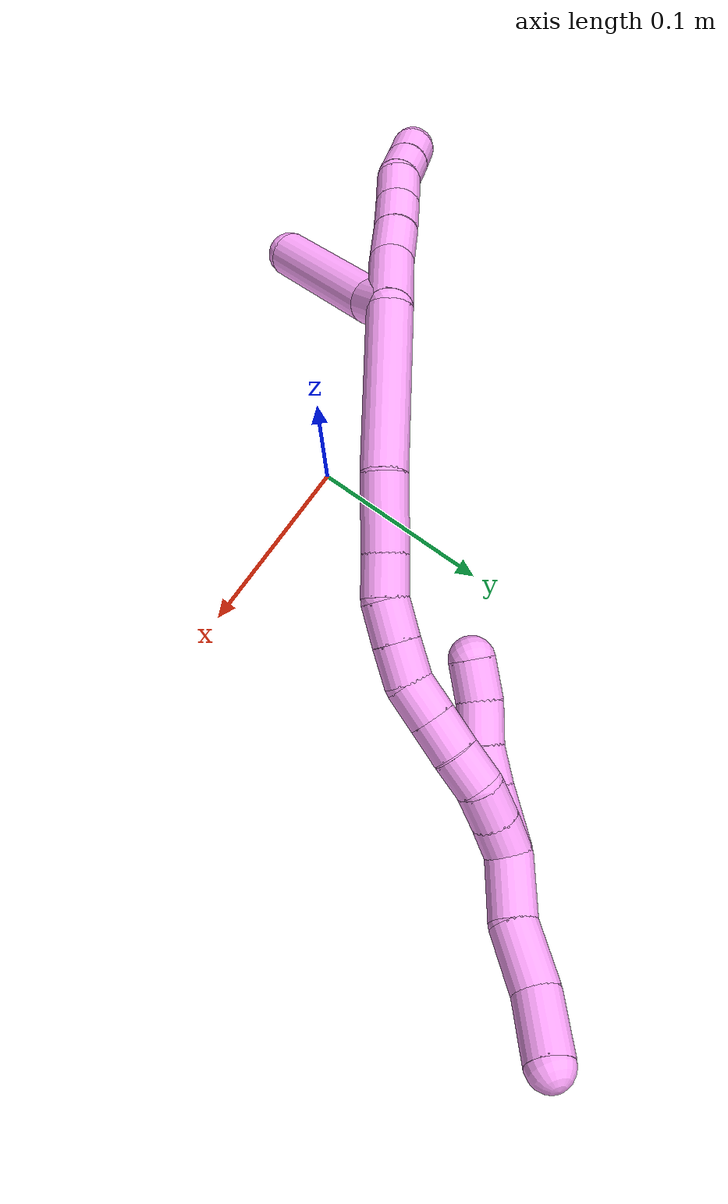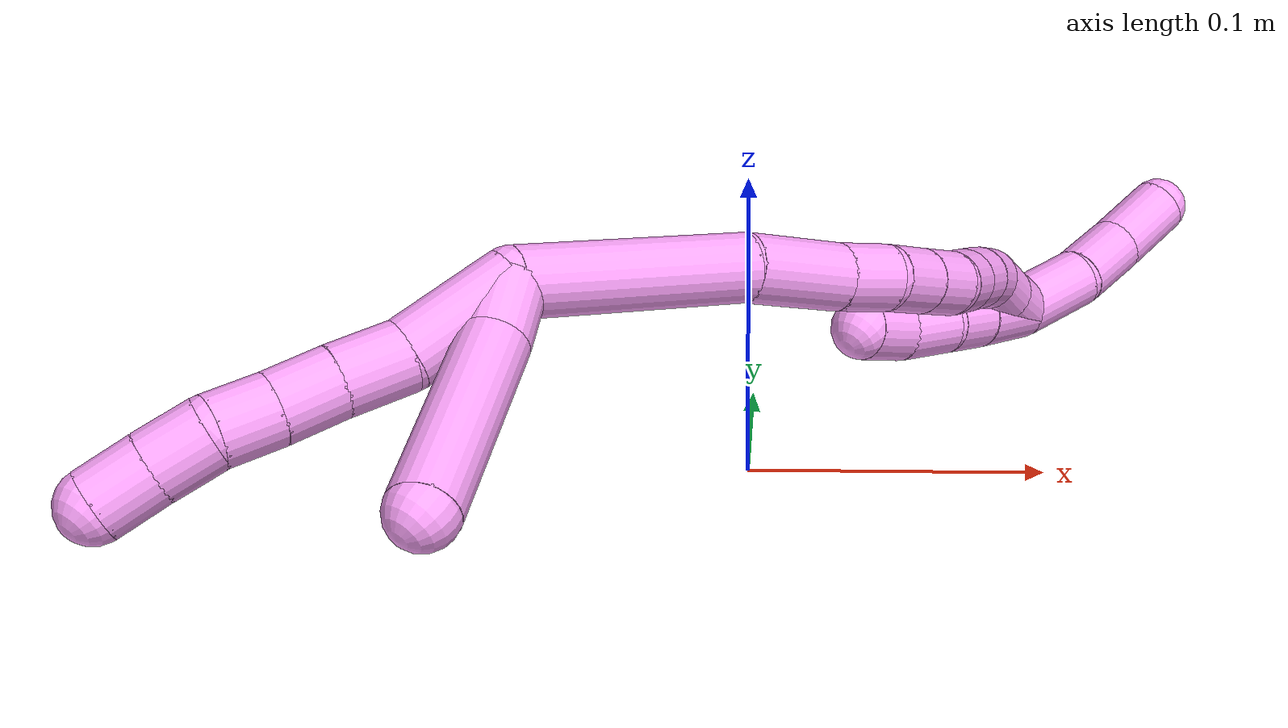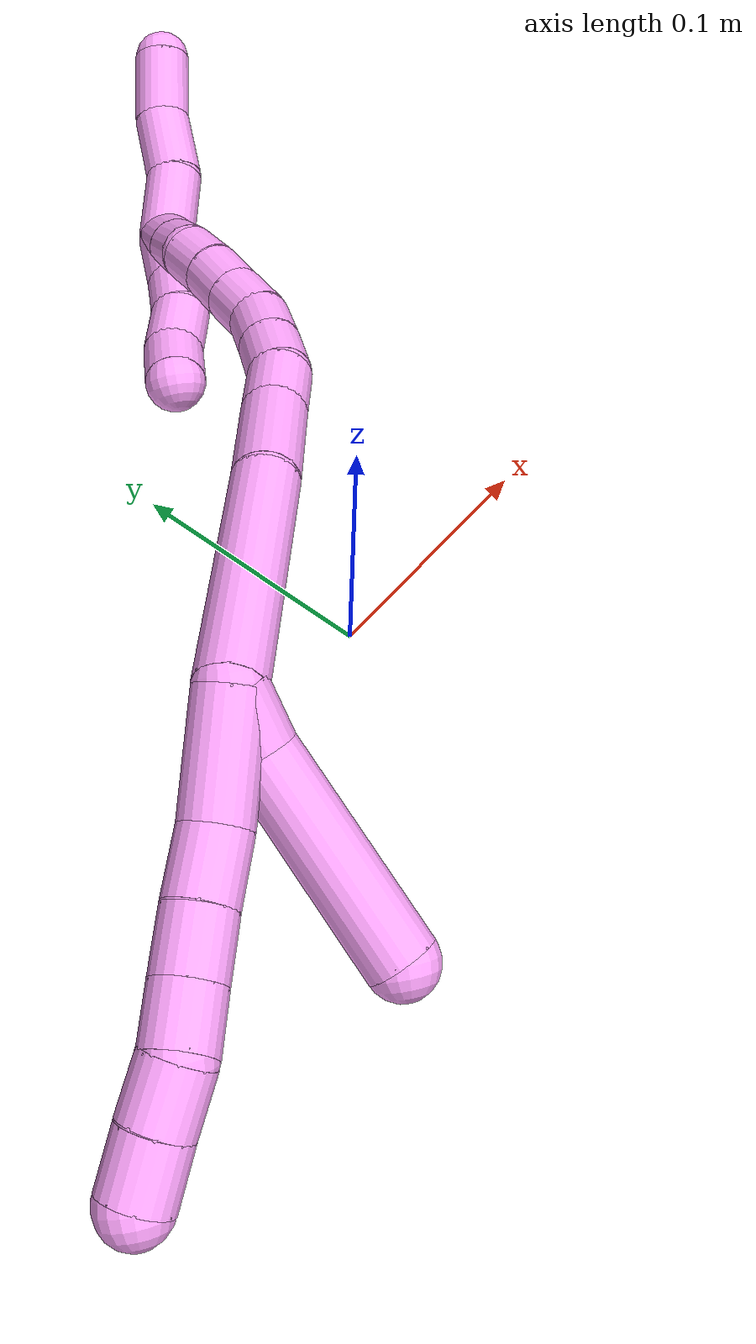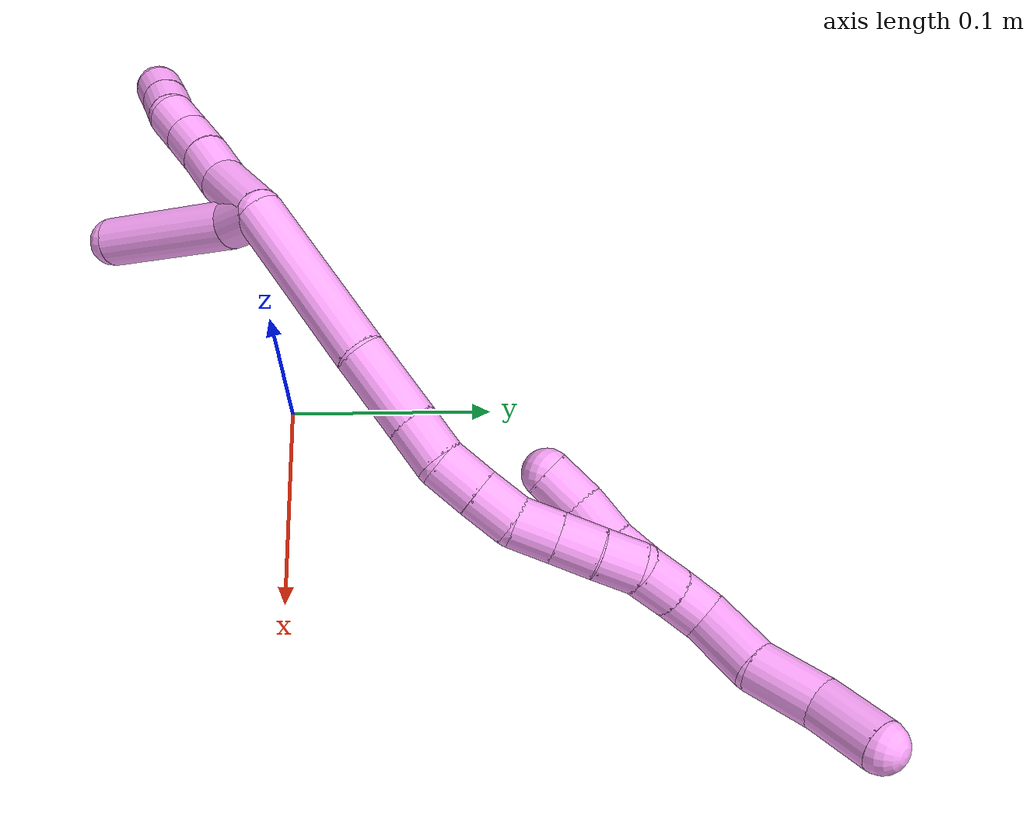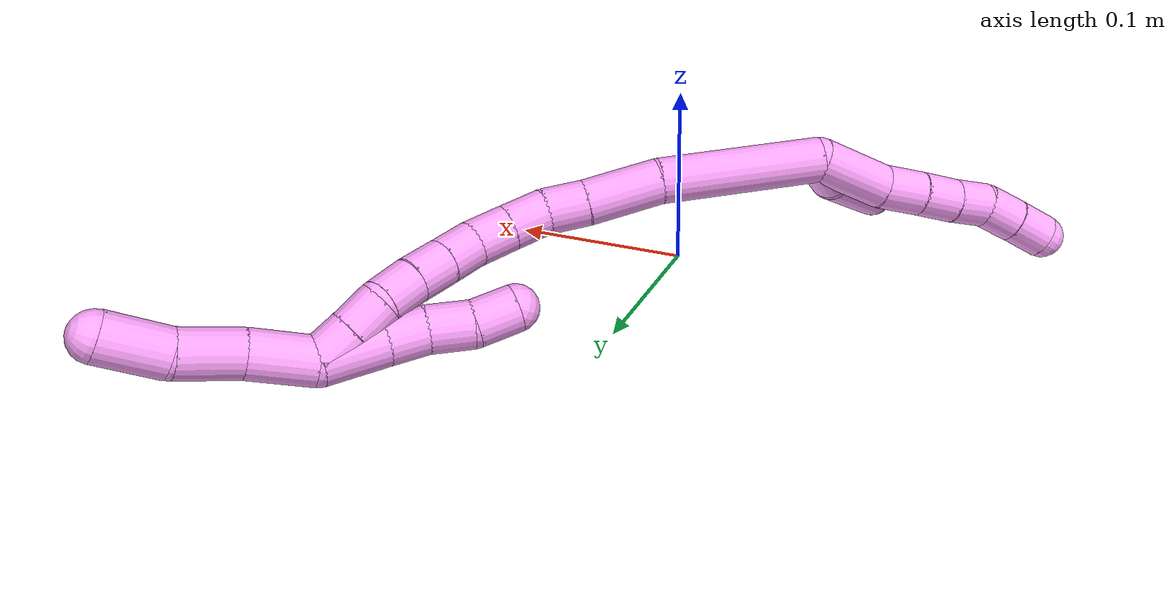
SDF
<sdf version="1.7">
 <world name="default">
  <model name="4">
   <static>0</static>
   <link name="4">
    <collision name="collision-cylinder-e_1_2_8">
     <pose>-0.005664 0.002243 -0.020567 -3.03296 -0.267232 2.37288</pose>
     <geometry><cylinder><radius>0.0125</radius><length>0.042901</length></cylinder></geometry>
     <surface>
      <friction><ode><mu>1.16</mu><mu2>1.16</mu2><slip1>0</slip1><slip2>0</slip2></ode></friction>
      <contact><ode><kp>1e+06</kp><kd>1</kd><max_vel>0</max_vel><min_depth>0.001</min_depth></ode></contact>
     </surface>
    </collision>
    <visual name="visual-cylinder-e_1_2_8">
     <pose>-0.005664 0.002243 -0.020567 -3.03296 -0.267232 2.37288</pose>
     <geometry><cylinder><radius>0.0125</radius><length>0.042901</length></cylinder></geometry>
     <material><ambient>1 0.65098 0.996078 1</ambient></material>
    </visual>
    <collision name="collision-cylinder-e_2_8_9">
     <pose>-0.016817 0.004353 -0.05187 3.12923 -0.472523 -3.09024</pose>
     <geometry><cylinder><radius>0.0125</radius><length>0.024117</length></cylinder></geometry>
     <surface>
      <friction><ode><mu>1.16</mu><mu2>1.16</mu2><slip1>0</slip1><slip2>0</slip2></ode></friction>
      <contact><ode><kp>1e+06</kp><kd>1</kd><max_vel>0</max_vel><min_depth>0.001</min_depth></ode></contact>
     </surface>
    </collision>
    <visual name="visual-cylinder-e_2_8_9">
     <pose>-0.016817 0.004353 -0.05187 3.12923 -0.472523 -3.09024</pose>
     <geometry><cylinder><radius>0.0125</radius><length>0.024117</length></cylinder></geometry>
     <material><ambient>1 0.65098 0.996078 1</ambient></material>
    </visual>
    <collision name="collision-cylinder-e_3_9_10">
     <pose>-0.026707 0.004082 -0.072521 3.12762 -0.41784 -3.0757</pose>
     <geometry><cylinder><radius>0.0125</radius><length>0.021696</length></cylinder></geometry>
     <surface>
      <friction><ode><mu>1.16</mu><mu2>1.16</mu2><slip1>0</slip1><slip2>0</slip2></ode></friction>
      <contact><ode><kp>1e+06</kp><kd>1</kd><max_vel>0</max_vel><min_depth>0.001</min_depth></ode></contact>
     </surface>
    </collision>
    <visual name="visual-cylinder-e_3_9_10">
     <pose>-0.026707 0.004082 -0.072521 3.12762 -0.41784 -3.0757</pose>
     <geometry><cylinder><radius>0.0125</radius><length>0.021696</length></cylinder></geometry>
     <material><ambient>1 0.65098 0.996078 1</ambient></material>
    </visual>
    <collision name="collision-cylinder-e_4_10_11">
     <pose>-0.035507 0.003198 -0.09166 3.06096 -0.443582 -2.78759</pose>
     <geometry><cylinder><radius>0.0125</radius><length>0.020494</length></cylinder></geometry>
     <surface>
      <friction><ode><mu>1.16</mu><mu2>1.16</mu2><slip1>0</slip1><slip2>0</slip2></ode></friction>
      <contact><ode><kp>1e+06</kp><kd>1</kd><max_vel>0</max_vel><min_depth>0.001</min_depth></ode></contact>
     </surface>
    </collision>
    <visual name="visual-cylinder-e_4_10_11">
     <pose>-0.035507 0.003198 -0.09166 3.06096 -0.443582 -2.78759</pose>
     <geometry><cylinder><radius>0.0125</radius><length>0.020494</length></cylinder></geometry>
     <material><ambient>1 0.65098 0.996078 1</ambient></material>
    </visual>
    <collision name="collision-cylinder-e_5_11_12">
     <pose>-0.043846 0.005171 -0.109921 -2.84936 -0.395672 1.87505</pose>
     <geometry><cylinder><radius>0.0125</radius><length>0.020453</length></cylinder></geometry>
     <surface>
      <friction><ode><mu>1.16</mu><mu2>1.16</mu2><slip1>0</slip1><slip2>0</slip2></ode></friction>
      <contact><ode><kp>1e+06</kp><kd>1</kd><max_vel>0</max_vel><min_depth>0.001</min_depth></ode></contact>
     </surface>
    </collision>
    <visual name="visual-cylinder-e_5_11_12">
     <pose>-0.043846 0.005171 -0.109921 -2.84936 -0.395672 1.87505</pose>
     <geometry><cylinder><radius>0.0125</radius><length>0.020453</length></cylinder></geometry>
     <material><ambient>1 0.65098 0.996078 1</ambient></material>
    </visual>
    <collision name="collision-cylinder-e_6_12_6">
     <pose>-0.051306 0.010548 -0.128121 -2.85919 -0.353237 1.79645</pose>
     <geometry><cylinder><radius>0.0125</radius><length>0.020339</length></cylinder></geometry>
     <surface>
      <friction><ode><mu>1.16</mu><mu2>1.16</mu2><slip1>0</slip1><slip2>0</slip2></ode></friction>
      <contact><ode><kp>1e+06</kp><kd>1</kd><max_vel>0</max_vel><min_depth>0.001</min_depth></ode></contact>
     </surface>
    </collision>
    <visual name="visual-cylinder-e_6_12_6">
     <pose>-0.051306 0.010548 -0.128121 -2.85919 -0.353237 1.79645</pose>
     <geometry><cylinder><radius>0.0125</radius><length>0.020339</length></cylinder></geometry>
     <material><ambient>1 0.65098 0.996078 1</ambient></material>
    </visual>
    <collision name="collision-cylinder-e_1_2_13">
     <pose>0.004336 0.00056 -0.010751 -3.08954 0.382879 -2.87457</pose>
     <geometry><cylinder><radius>0.0125</radius><length>0.023212</length></cylinder></geometry>
     <surface>
      <friction><ode><mu>1.16</mu><mu2>1.16</mu2><slip1>0</slip1><slip2>0</slip2></ode></friction>
      <contact><ode><kp>1e+06</kp><kd>1</kd><max_vel>0</max_vel><min_depth>0.001</min_depth></ode></contact>
     </surface>
    </collision>
    <visual name="visual-cylinder-e_1_2_13">
     <pose>0.004336 0.00056 -0.010751 -3.08954 0.382879 -2.87457</pose>
     <geometry><cylinder><radius>0.0125</radius><length>0.023212</length></cylinder></geometry>
     <material><ambient>1 0.65098 0.996078 1</ambient></material>
    </visual>
    <collision name="collision-cylinder-e_2_13_5">
     <pose>0.020887 -0.008806 -0.056521 2.8654 0.323777 1.73147</pose>
     <geometry><cylinder><radius>0.0125</radius><length>0.076788</length></cylinder></geometry>
     <surface>
      <friction><ode><mu>1.16</mu><mu2>1.16</mu2><slip1>0</slip1><slip2>0</slip2></ode></friction>
      <contact><ode><kp>1e+06</kp><kd>1</kd><max_vel>0</max_vel><min_depth>0.001</min_depth></ode></contact>
     </surface>
    </collision>
    <visual name="visual-cylinder-e_2_13_5">
     <pose>0.020887 -0.008806 -0.056521 2.8654 0.323777 1.73147</pose>
     <geometry><cylinder><radius>0.0125</radius><length>0.076788</length></cylinder></geometry>
     <material><ambient>1 0.65098 0.996078 1</ambient></material>
    </visual>
    <collision name="collision-cylinder-e_1_2_14">
     <pose>0.025929 0.012385 0.035251 -0.337859 0.60667 -0.106664</pose>
     <geometry><cylinder><radius>0.0125</radius><length>0.090958</length></cylinder></geometry>
     <surface>
      <friction><ode><mu>1.16</mu><mu2>1.16</mu2><slip1>0</slip1><slip2>0</slip2></ode></friction>
      <contact><ode><kp>1e+06</kp><kd>1</kd><max_vel>0</max_vel><min_depth>0.001</min_depth></ode></contact>
     </surface>
    </collision>
    <visual name="visual-cylinder-e_1_2_14">
     <pose>0.025929 0.012385 0.035251 -0.337859 0.60667 -0.106664</pose>
     <geometry><cylinder><radius>0.0125</radius><length>0.090958</length></cylinder></geometry>
     <material><ambient>1 0.65098 0.996078 1</ambient></material>
    </visual>
    <collision name="collision-cylinder-e_2_14_15">
     <pose>0.064239 0.033058 0.08489 -0.522655 0.640679 -0.176994</pose>
     <geometry><cylinder><radius>0.0125</radius><length>0.041424</length></cylinder></geometry>
     <surface>
      <friction><ode><mu>1.16</mu><mu2>1.16</mu2><slip1>0</slip1><slip2>0</slip2></ode></friction>
      <contact><ode><kp>1e+06</kp><kd>1</kd><max_vel>0</max_vel><min_depth>0.001</min_depth></ode></contact>
     </surface>
    </collision>
    <visual name="visual-cylinder-e_2_14_15">
     <pose>0.064239 0.033058 0.08489 -0.522655 0.640679 -0.176994</pose>
     <geometry><cylinder><radius>0.0125</radius><length>0.041424</length></cylinder></geometry>
     <material><ambient>1 0.65098 0.996078 1</ambient></material>
    </visual>
    <collision name="collision-cylinder-e_3_15_16">
     <pose>0.083295 0.04519 0.107651 -0.430325 0.627086 -0.141485</pose>
     <geometry><cylinder><radius>0.0125</radius><length>0.022755</length></cylinder></geometry>
     <surface>
      <friction><ode><mu>1.16</mu><mu2>1.16</mu2><slip1>0</slip1><slip2>0</slip2></ode></friction>
      <contact><ode><kp>1e+06</kp><kd>1</kd><max_vel>0</max_vel><min_depth>0.001</min_depth></ode></contact>
     </surface>
    </collision>
    <visual name="visual-cylinder-e_3_15_16">
     <pose>0.083295 0.04519 0.107651 -0.430325 0.627086 -0.141485</pose>
     <geometry><cylinder><radius>0.0125</radius><length>0.022755</length></cylinder></geometry>
     <material><ambient>1 0.65098 0.996078 1</ambient></material>
    </visual>
    <collision name="collision-cylinder-e_4_16_17">
     <pose>0.094487 0.055233 0.123904 -0.666535 0.423128 -0.148431</pose>
     <geometry><cylinder><radius>0.0125</radius><length>0.021993</length></cylinder></geometry>
     <surface>
      <friction><ode><mu>1.16</mu><mu2>1.16</mu2><slip1>0</slip1><slip2>0</slip2></ode></friction>
      <contact><ode><kp>1e+06</kp><kd>1</kd><max_vel>0</max_vel><min_depth>0.001</min_depth></ode></contact>
     </surface>
    </collision>
    <visual name="visual-cylinder-e_4_16_17">
     <pose>0.094487 0.055233 0.123904 -0.666535 0.423128 -0.148431</pose>
     <geometry><cylinder><radius>0.0125</radius><length>0.021993</length></cylinder></geometry>
     <material><ambient>1 0.65098 0.996078 1</ambient></material>
    </visual>
    <collision name="collision-cylinder-e_5_17_18">
     <pose>0.103092 0.067595 0.139442 -0.677709 0.394265 -0.140555</pose>
     <geometry><cylinder><radius>0.0125</radius><length>0.021293</length></cylinder></geometry>
     <surface>
      <friction><ode><mu>1.16</mu><mu2>1.16</mu2><slip1>0</slip1><slip2>0</slip2></ode></friction>
      <contact><ode><kp>1e+06</kp><kd>1</kd><max_vel>0</max_vel><min_depth>0.001</min_depth></ode></contact>
     </surface>
    </collision>
    <visual name="visual-cylinder-e_5_17_18">
     <pose>0.103092 0.067595 0.139442 -0.677709 0.394265 -0.140555</pose>
     <geometry><cylinder><radius>0.0125</radius><length>0.021293</length></cylinder></geometry>
     <material><ambient>1 0.65098 0.996078 1</ambient></material>
    </visual>
    <collision name="collision-cylinder-e_6_18_19">
     <pose>0.10823 0.080846 0.154536 -0.761454 0.101761 -0.04076</pose>
     <geometry><cylinder><radius>0.0125</radius><length>0.020653</length></cylinder></geometry>
     <surface>
      <friction><ode><mu>1.16</mu><mu2>1.16</mu2><slip1>0</slip1><slip2>0</slip2></ode></friction>
      <contact><ode><kp>1e+06</kp><kd>1</kd><max_vel>0</max_vel><min_depth>0.001</min_depth></ode></contact>
     </surface>
    </collision>
    <visual name="visual-cylinder-e_6_18_19">
     <pose>0.10823 0.080846 0.154536 -0.761454 0.101761 -0.04076</pose>
     <geometry><cylinder><radius>0.0125</radius><length>0.020653</length></cylinder></geometry>
     <material><ambient>1 0.65098 0.996078 1</ambient></material>
    </visual>
    <collision name="collision-cylinder-e_7_19_20">
     <pose>0.110368 0.094878 0.16941 -0.751034 0.106561 -0.042043</pose>
     <geometry><cylinder><radius>0.0125</radius><length>0.020468</length></cylinder></geometry>
     <surface>
      <friction><ode><mu>1.16</mu><mu2>1.16</mu2><slip1>0</slip1><slip2>0</slip2></ode></friction>
      <contact><ode><kp>1e+06</kp><kd>1</kd><max_vel>0</max_vel><min_depth>0.001</min_depth></ode></contact>
     </surface>
    </collision>
    <visual name="visual-cylinder-e_7_19_20">
     <pose>0.110368 0.094878 0.16941 -0.751034 0.106561 -0.042043</pose>
     <geometry><cylinder><radius>0.0125</radius><length>0.020468</length></cylinder></geometry>
     <material><ambient>1 0.65098 0.996078 1</ambient></material>
    </visual>
    <collision name="collision-cylinder-e_8_20_21">
     <pose>0.112487 0.10927 0.183571 -0.836532 0.102362 -0.045531</pose>
     <geometry><cylinder><radius>0.0125</radius><length>0.020171</length></cylinder></geometry>
     <surface>
      <friction><ode><mu>1.16</mu><mu2>1.16</mu2><slip1>0</slip1><slip2>0</slip2></ode></friction>
      <contact><ode><kp>1e+06</kp><kd>1</kd><max_vel>0</max_vel><min_depth>0.001</min_depth></ode></contact>
     </surface>
    </collision>
    <visual name="visual-cylinder-e_8_20_21">
     <pose>0.112487 0.10927 0.183571 -0.836532 0.102362 -0.045531</pose>
     <geometry><cylinder><radius>0.0125</radius><length>0.020171</length></cylinder></geometry>
     <material><ambient>1 0.65098 0.996078 1</ambient></material>
    </visual>
    <collision name="collision-cylinder-e_9_21_22">
     <pose>0.117135 0.124884 0.194952 -1.05232 0.367316 -0.214926</pose>
     <geometry><cylinder><radius>0.0125</radius><length>0.020149</length></cylinder></geometry>
     <surface>
      <friction><ode><mu>1.16</mu><mu2>1.16</mu2><slip1>0</slip1><slip2>0</slip2></ode></friction>
      <contact><ode><kp>1e+06</kp><kd>1</kd><max_vel>0</max_vel><min_depth>0.001</min_depth></ode></contact>
     </surface>
    </collision>
    <visual name="visual-cylinder-e_9_21_22">
     <pose>0.117135 0.124884 0.194952 -1.05232 0.367316 -0.214926</pose>
     <geometry><cylinder><radius>0.0125</radius><length>0.020149</length></cylinder></geometry>
     <material><ambient>1 0.65098 0.996078 1</ambient></material>
    </visual>
    <collision name="collision-cylinder-e_10_22_1">
     <pose>0.124632 0.140938 0.204523 -1.0139 0.395464 -0.221621</pose>
     <geometry><cylinder><radius>0.0125</radius><length>0.020137</length></cylinder></geometry>
     <surface>
      <friction><ode><mu>1.16</mu><mu2>1.16</mu2><slip1>0</slip1><slip2>0</slip2></ode></friction>
      <contact><ode><kp>1e+06</kp><kd>1</kd><max_vel>0</max_vel><min_depth>0.001</min_depth></ode></contact>
     </surface>
    </collision>
    <visual name="visual-cylinder-e_10_22_1">
     <pose>0.124632 0.140938 0.204523 -1.0139 0.395464 -0.221621</pose>
     <geometry><cylinder><radius>0.0125</radius><length>0.020137</length></cylinder></geometry>
     <material><ambient>1 0.65098 0.996078 1</ambient></material>
    </visual>
    <collision name="collision-cylinder-e_1_1_23">
     <pose>0.12286 0.141275 0.195944 2.63135 -0.35044 -1.19272</pose>
     <geometry><cylinder><radius>0.0125</radius><length>0.032919</length></cylinder></geometry>
     <surface>
      <friction><ode><mu>1.16</mu><mu2>1.16</mu2><slip1>0</slip1><slip2>0</slip2></ode></friction>
      <contact><ode><kp>1e+06</kp><kd>1</kd><max_vel>0</max_vel><min_depth>0.001</min_depth></ode></contact>
     </surface>
    </collision>
    <visual name="visual-cylinder-e_1_1_23">
     <pose>0.12286 0.141275 0.195944 2.63135 -0.35044 -1.19272</pose>
     <geometry><cylinder><radius>0.0125</radius><length>0.032919</length></cylinder></geometry>
     <material><ambient>1 0.65098 0.996078 1</ambient></material>
    </visual>
    <collision name="collision-cylinder-e_2_23_24">
     <pose>0.113042 0.129071 0.173938 2.64143 -0.405577 -1.35555</pose>
     <geometry><cylinder><radius>0.0125</radius><length>0.021123</length></cylinder></geometry>
     <surface>
      <friction><ode><mu>1.16</mu><mu2>1.16</mu2><slip1>0</slip1><slip2>0</slip2></ode></friction>
      <contact><ode><kp>1e+06</kp><kd>1</kd><max_vel>0</max_vel><min_depth>0.001</min_depth></ode></contact>
     </surface>
    </collision>
    <visual name="visual-cylinder-e_2_23_24">
     <pose>0.113042 0.129071 0.173938 2.64143 -0.405577 -1.35555</pose>
     <geometry><cylinder><radius>0.0125</radius><length>0.021123</length></cylinder></geometry>
     <material><ambient>1 0.65098 0.996078 1</ambient></material>
    </visual>
    <collision name="collision-cylinder-e_3_24_25">
     <pose>0.102716 0.121472 0.155903 2.84152 -0.553689 -2.1637</pose>
     <geometry><cylinder><radius>0.0125</radius><length>0.023428</length></cylinder></geometry>
     <surface>
      <friction><ode><mu>1.16</mu><mu2>1.16</mu2><slip1>0</slip1><slip2>0</slip2></ode></friction>
      <contact><ode><kp>1e+06</kp><kd>1</kd><max_vel>0</max_vel><min_depth>0.001</min_depth></ode></contact>
     </surface>
    </collision>
    <visual name="visual-cylinder-e_3_24_25">
     <pose>0.102716 0.121472 0.155903 2.84152 -0.553689 -2.1637</pose>
     <geometry><cylinder><radius>0.0125</radius><length>0.023428</length></cylinder></geometry>
     <material><ambient>1 0.65098 0.996078 1</ambient></material>
    </visual>
    <collision name="collision-cylinder-e_4_25_4">
     <pose>0.091238 0.112913 0.138193 2.54082 -0.491643 -1.36159</pose>
     <geometry><cylinder><radius>0.0125</radius><length>0.02253</length></cylinder></geometry>
     <surface>
      <friction><ode><mu>1.16</mu><mu2>1.16</mu2><slip1>0</slip1><slip2>0</slip2></ode></friction>
      <contact><ode><kp>1e+06</kp><kd>1</kd><max_vel>0</max_vel><min_depth>0.001</min_depth></ode></contact>
     </surface>
    </collision>
    <visual name="visual-cylinder-e_4_25_4">
     <pose>0.091238 0.112913 0.138193 2.54082 -0.491643 -1.36159</pose>
     <geometry><cylinder><radius>0.0125</radius><length>0.02253</length></cylinder></geometry>
     <material><ambient>1 0.65098 0.996078 1</ambient></material>
    </visual>
    <collision name="collision-cylinder-e_1_1_26">
     <pose>0.134792 0.149901 0.225373 -0.067387 0.374642 -0.012777</pose>
     <geometry><cylinder><radius>0.0125</radius><length>0.034333</length></cylinder></geometry>
     <surface>
      <friction><ode><mu>1.16</mu><mu2>1.16</mu2><slip1>0</slip1><slip2>0</slip2></ode></friction>
      <contact><ode><kp>1e+06</kp><kd>1</kd><max_vel>0</max_vel><min_depth>0.001</min_depth></ode></contact>
     </surface>
    </collision>
    <visual name="visual-cylinder-e_1_1_26">
     <pose>0.134792 0.149901 0.225373 -0.067387 0.374642 -0.012777</pose>
     <geometry><cylinder><radius>0.0125</radius><length>0.034333</length></cylinder></geometry>
     <material><ambient>1 0.65098 0.996078 1</ambient></material>
    </visual>
    <collision name="collision-cylinder-e_2_26_27">
     <pose>0.143644 0.154618 0.257199 -0.22529 0.156357 -0.017723</pose>
     <geometry><cylinder><radius>0.0125</radius><length>0.032999</length></cylinder></geometry>
     <surface>
      <friction><ode><mu>1.16</mu><mu2>1.16</mu2><slip1>0</slip1><slip2>0</slip2></ode></friction>
      <contact><ode><kp>1e+06</kp><kd>1</kd><max_vel>0</max_vel><min_depth>0.001</min_depth></ode></contact>
     </surface>
    </collision>
    <visual name="visual-cylinder-e_2_26_27">
     <pose>0.143644 0.154618 0.257199 -0.22529 0.156357 -0.017723</pose>
     <geometry><cylinder><radius>0.0125</radius><length>0.032999</length></cylinder></geometry>
     <material><ambient>1 0.65098 0.996078 1</ambient></material>
    </visual>
    <collision name="collision-cylinder-e_3_27_3">
     <pose>0.14919 0.157907 0.289142 0.0219 0.183301 0.002013</pose>
     <geometry><cylinder><radius>0.0125</radius><length>0.032668</length></cylinder></geometry>
     <surface>
      <friction><ode><mu>1.16</mu><mu2>1.16</mu2><slip1>0</slip1><slip2>0</slip2></ode></friction>
      <contact><ode><kp>1e+06</kp><kd>1</kd><max_vel>0</max_vel><min_depth>0.001</min_depth></ode></contact>
     </surface>
    </collision>
    <visual name="visual-cylinder-e_3_27_3">
     <pose>0.14919 0.157907 0.289142 0.0219 0.183301 0.002013</pose>
     <geometry><cylinder><radius>0.0125</radius><length>0.032668</length></cylinder></geometry>
     <material><ambient>1 0.65098 0.996078 1</ambient></material>
    </visual>
    <collision name="collision-sphere-3">
     <pose>0.152168 0.157555 0.305199 0 -0 0</pose>
     <geometry><sphere><radius>0.0125</radius></sphere></geometry>
     <surface>
      <friction><ode><mu>1.16</mu><mu2>1.16</mu2><slip1>0</slip1><slip2>0</slip2></ode></friction>
      <contact><ode><kp>1e+06</kp><kd>1</kd><max_vel>0</max_vel><min_depth>0.001</min_depth></ode></contact>
     </surface>
    </collision>
    <visual name="visual-sphere-3">
     <pose>0.152168 0.157555 0.305199 0 -0 0</pose>
     <geometry><sphere><radius>0.0125</radius></sphere></geometry>
     <material><ambient>1 0.65098 0.996078 1</ambient></material>
    </visual>
    <collision name="collision-sphere-27">
     <pose>0.146213 0.158259 0.273085 0 -0 0</pose>
     <geometry><sphere><radius>0.0125</radius></sphere></geometry>
     <surface>
      <friction><ode><mu>1.16</mu><mu2>1.16</mu2><slip1>0</slip1><slip2>0</slip2></ode></friction>
      <contact><ode><kp>1e+06</kp><kd>1</kd><max_vel>0</max_vel><min_depth>0.001</min_depth></ode></contact>
     </surface>
    </collision>
    <visual name="visual-sphere-27">
     <pose>0.146213 0.158259 0.273085 0 -0 0</pose>
     <geometry><sphere><radius>0.0125</radius></sphere></geometry>
     <material><ambient>1 0.65098 0.996078 1</ambient></material>
    </visual>
    <collision name="collision-sphere-26">
     <pose>0.141074 0.150977 0.241312 0 -0 0</pose>
     <geometry><sphere><radius>0.0125</radius></sphere></geometry>
     <surface>
      <friction><ode><mu>1.16</mu><mu2>1.16</mu2><slip1>0</slip1><slip2>0</slip2></ode></friction>
      <contact><ode><kp>1e+06</kp><kd>1</kd><max_vel>0</max_vel><min_depth>0.001</min_depth></ode></contact>
     </surface>
    </collision>
    <visual name="visual-sphere-26">
     <pose>0.141074 0.150977 0.241312 0 -0 0</pose>
     <geometry><sphere><radius>0.0125</radius></sphere></geometry>
     <material><ambient>1 0.65098 0.996078 1</ambient></material>
    </visual>
    <collision name="collision-sphere-4">
     <pose>0.08592 0.1073 0.130001 0 -0 0</pose>
     <geometry><sphere><radius>0.0125</radius></sphere></geometry>
     <surface>
      <friction><ode><mu>1.16</mu><mu2>1.16</mu2><slip1>0</slip1><slip2>0</slip2></ode></friction>
      <contact><ode><kp>1e+06</kp><kd>1</kd><max_vel>0</max_vel><min_depth>0.001</min_depth></ode></contact>
     </surface>
    </collision>
    <visual name="visual-sphere-4">
     <pose>0.08592 0.1073 0.130001 0 -0 0</pose>
     <geometry><sphere><radius>0.0125</radius></sphere></geometry>
     <material><ambient>1 0.65098 0.996078 1</ambient></material>
    </visual>
    <collision name="collision-sphere-25">
     <pose>0.096556 0.118527 0.146385 0 -0 0</pose>
     <geometry><sphere><radius>0.0125</radius></sphere></geometry>
     <surface>
      <friction><ode><mu>1.16</mu><mu2>1.16</mu2><slip1>0</slip1><slip2>0</slip2></ode></friction>
      <contact><ode><kp>1e+06</kp><kd>1</kd><max_vel>0</max_vel><min_depth>0.001</min_depth></ode></contact>
     </surface>
    </collision>
    <visual name="visual-sphere-25">
     <pose>0.096556 0.118527 0.146385 0 -0 0</pose>
     <geometry><sphere><radius>0.0125</radius></sphere></geometry>
     <material><ambient>1 0.65098 0.996078 1</ambient></material>
    </visual>
    <collision name="collision-sphere-24">
     <pose>0.108875 0.124417 0.165422 0 -0 0</pose>
     <geometry><sphere><radius>0.0125</radius></sphere></geometry>
     <surface>
      <friction><ode><mu>1.16</mu><mu2>1.16</mu2><slip1>0</slip1><slip2>0</slip2></ode></friction>
      <contact><ode><kp>1e+06</kp><kd>1</kd><max_vel>0</max_vel><min_depth>0.001</min_depth></ode></contact>
     </surface>
    </collision>
    <visual name="visual-sphere-24">
     <pose>0.108875 0.124417 0.165422 0 -0 0</pose>
     <geometry><sphere><radius>0.0125</radius></sphere></geometry>
     <material><ambient>1 0.65098 0.996078 1</ambient></material>
    </visual>
    <collision name="collision-sphere-23">
     <pose>0.117209 0.133725 0.182454 0 -0 0</pose>
     <geometry><sphere><radius>0.0125</radius></sphere></geometry>
     <surface>
      <friction><ode><mu>1.16</mu><mu2>1.16</mu2><slip1>0</slip1><slip2>0</slip2></ode></friction>
      <contact><ode><kp>1e+06</kp><kd>1</kd><max_vel>0</max_vel><min_depth>0.001</min_depth></ode></contact>
     </surface>
    </collision>
    <visual name="visual-sphere-23">
     <pose>0.117209 0.133725 0.182454 0 -0 0</pose>
     <geometry><sphere><radius>0.0125</radius></sphere></geometry>
     <material><ambient>1 0.65098 0.996078 1</ambient></material>
    </visual>
    <collision name="collision-sphere-1">
     <pose>0.128511 0.148825 0.209434 0 -0 0</pose>
     <geometry><sphere><radius>0.0125</radius></sphere></geometry>
     <surface>
      <friction><ode><mu>1.16</mu><mu2>1.16</mu2><slip1>0</slip1><slip2>0</slip2></ode></friction>
      <contact><ode><kp>1e+06</kp><kd>1</kd><max_vel>0</max_vel><min_depth>0.001</min_depth></ode></contact>
     </surface>
    </collision>
    <visual name="visual-sphere-1">
     <pose>0.128511 0.148825 0.209434 0 -0 0</pose>
     <geometry><sphere><radius>0.0125</radius></sphere></geometry>
     <material><ambient>1 0.65098 0.996078 1</ambient></material>
    </visual>
    <collision name="collision-sphere-22">
     <pose>0.120753 0.133051 0.199612 0 -0 0</pose>
     <geometry><sphere><radius>0.0125</radius></sphere></geometry>
     <surface>
      <friction><ode><mu>1.16</mu><mu2>1.16</mu2><slip1>0</slip1><slip2>0</slip2></ode></friction>
      <contact><ode><kp>1e+06</kp><kd>1</kd><max_vel>0</max_vel><min_depth>0.001</min_depth></ode></contact>
     </surface>
    </collision>
    <visual name="visual-sphere-22">
     <pose>0.120753 0.133051 0.199612 0 -0 0</pose>
     <geometry><sphere><radius>0.0125</radius></sphere></geometry>
     <material><ambient>1 0.65098 0.996078 1</ambient></material>
    </visual>
    <collision name="collision-sphere-21">
     <pose>0.113517 0.116717 0.190293 0 -0 0</pose>
     <geometry><sphere><radius>0.0125</radius></sphere></geometry>
     <surface>
      <friction><ode><mu>1.16</mu><mu2>1.16</mu2><slip1>0</slip1><slip2>0</slip2></ode></friction>
      <contact><ode><kp>1e+06</kp><kd>1</kd><max_vel>0</max_vel><min_depth>0.001</min_depth></ode></contact>
     </surface>
    </collision>
    <visual name="visual-sphere-21">
     <pose>0.113517 0.116717 0.190293 0 -0 0</pose>
     <geometry><sphere><radius>0.0125</radius></sphere></geometry>
     <material><ambient>1 0.65098 0.996078 1</ambient></material>
    </visual>
    <collision name="collision-sphere-12">
     <pose>-0.047788 0.007889 -0.118957 0 -0 0</pose>
     <geometry><sphere><radius>0.0125</radius></sphere></geometry>
     <surface>
      <friction><ode><mu>1.16</mu><mu2>1.16</mu2><slip1>0</slip1><slip2>0</slip2></ode></friction>
      <contact><ode><kp>1e+06</kp><kd>1</kd><max_vel>0</max_vel><min_depth>0.001</min_depth></ode></contact>
     </surface>
    </collision>
    <visual name="visual-sphere-12">
     <pose>-0.047788 0.007889 -0.118957 0 -0 0</pose>
     <geometry><sphere><radius>0.0125</radius></sphere></geometry>
     <material><ambient>1 0.65098 0.996078 1</ambient></material>
    </visual>
    <collision name="collision-sphere-11">
     <pose>-0.039905 0.002452 -0.100885 0 -0 0</pose>
     <geometry><sphere><radius>0.0125</radius></sphere></geometry>
     <surface>
      <friction><ode><mu>1.16</mu><mu2>1.16</mu2><slip1>0</slip1><slip2>0</slip2></ode></friction>
      <contact><ode><kp>1e+06</kp><kd>1</kd><max_vel>0</max_vel><min_depth>0.001</min_depth></ode></contact>
     </surface>
    </collision>
    <visual name="visual-sphere-11">
     <pose>-0.039905 0.002452 -0.100885 0 -0 0</pose>
     <geometry><sphere><radius>0.0125</radius></sphere></geometry>
     <material><ambient>1 0.65098 0.996078 1</ambient></material>
    </visual>
    <collision name="collision-sphere-10">
     <pose>-0.031109 0.003943 -0.082434 0 -0 0</pose>
     <geometry><sphere><radius>0.0125</radius></sphere></geometry>
     <surface>
      <friction><ode><mu>1.16</mu><mu2>1.16</mu2><slip1>0</slip1><slip2>0</slip2></ode></friction>
      <contact><ode><kp>1e+06</kp><kd>1</kd><max_vel>0</max_vel><min_depth>0.001</min_depth></ode></contact>
     </surface>
    </collision>
    <visual name="visual-sphere-10">
     <pose>-0.031109 0.003943 -0.082434 0 -0 0</pose>
     <geometry><sphere><radius>0.0125</radius></sphere></geometry>
     <material><ambient>1 0.65098 0.996078 1</ambient></material>
    </visual>
    <collision name="collision-sphere-9">
     <pose>-0.022305 0.00422 -0.062607 0 -0 0</pose>
     <geometry><sphere><radius>0.0125</radius></sphere></geometry>
     <surface>
      <friction><ode><mu>1.16</mu><mu2>1.16</mu2><slip1>0</slip1><slip2>0</slip2></ode></friction>
      <contact><ode><kp>1e+06</kp><kd>1</kd><max_vel>0</max_vel><min_depth>0.001</min_depth></ode></contact>
     </surface>
    </collision>
    <visual name="visual-sphere-9">
     <pose>-0.022305 0.00422 -0.062607 0 -0 0</pose>
     <geometry><sphere><radius>0.0125</radius></sphere></geometry>
     <material><ambient>1 0.65098 0.996078 1</ambient></material>
    </visual>
    <collision name="collision-sphere-2">
     <geometry><sphere><radius>0.0125</radius></sphere></geometry>
     <surface>
      <friction><ode><mu>1.16</mu><mu2>1.16</mu2><slip1>0</slip1><slip2>0</slip2></ode></friction>
      <contact><ode><kp>1e+06</kp><kd>1</kd><max_vel>0</max_vel><min_depth>0.001</min_depth></ode></contact>
     </surface>
    </collision>
    <visual name="visual-sphere-2">
     <geometry><sphere><radius>0.0125</radius></sphere></geometry>
     <material><ambient>1 0.65098 0.996078 1</ambient></material>
    </visual>
    <collision name="collision-sphere-19">
     <pose>0.109279 0.087935 0.161972 0 -0 0</pose>
     <geometry><sphere><radius>0.0125</radius></sphere></geometry>
     <surface>
      <friction><ode><mu>1.16</mu><mu2>1.16</mu2><slip1>0</slip1><slip2>0</slip2></ode></friction>
      <contact><ode><kp>1e+06</kp><kd>1</kd><max_vel>0</max_vel><min_depth>0.001</min_depth></ode></contact>
     </surface>
    </collision>
    <visual name="visual-sphere-19">
     <pose>0.109279 0.087935 0.161972 0 -0 0</pose>
     <geometry><sphere><radius>0.0125</radius></sphere></geometry>
     <material><ambient>1 0.65098 0.996078 1</ambient></material>
    </visual>
    <collision name="collision-sphere-8">
     <pose>-0.011328 0.004486 -0.041134 0 -0 0</pose>
     <geometry><sphere><radius>0.0125</radius></sphere></geometry>
     <surface>
      <friction><ode><mu>1.16</mu><mu2>1.16</mu2><slip1>0</slip1><slip2>0</slip2></ode></friction>
      <contact><ode><kp>1e+06</kp><kd>1</kd><max_vel>0</max_vel><min_depth>0.001</min_depth></ode></contact>
     </surface>
    </collision>
    <visual name="visual-sphere-8">
     <pose>-0.011328 0.004486 -0.041134 0 -0 0</pose>
     <geometry><sphere><radius>0.0125</radius></sphere></geometry>
     <material><ambient>1 0.65098 0.996078 1</ambient></material>
    </visual>
    <collision name="collision-sphere-6">
     <pose>-0.054824 0.013207 -0.137285 0 -0 0</pose>
     <geometry><sphere><radius>0.0125</radius></sphere></geometry>
     <surface>
      <friction><ode><mu>1.16</mu><mu2>1.16</mu2><slip1>0</slip1><slip2>0</slip2></ode></friction>
      <contact><ode><kp>1e+06</kp><kd>1</kd><max_vel>0</max_vel><min_depth>0.001</min_depth></ode></contact>
     </surface>
    </collision>
    <visual name="visual-sphere-6">
     <pose>-0.054824 0.013207 -0.137285 0 -0 0</pose>
     <geometry><sphere><radius>0.0125</radius></sphere></geometry>
     <material><ambient>1 0.65098 0.996078 1</ambient></material>
    </visual>
    <collision name="collision-sphere-13">
     <pose>0.008672 0.00112 -0.021502 0 -0 0</pose>
     <geometry><sphere><radius>0.0125</radius></sphere></geometry>
     <surface>
      <friction><ode><mu>1.16</mu><mu2>1.16</mu2><slip1>0</slip1><slip2>0</slip2></ode></friction>
      <contact><ode><kp>1e+06</kp><kd>1</kd><max_vel>0</max_vel><min_depth>0.001</min_depth></ode></contact>
     </surface>
    </collision>
    <visual name="visual-sphere-13">
     <pose>0.008672 0.00112 -0.021502 0 -0 0</pose>
     <geometry><sphere><radius>0.0125</radius></sphere></geometry>
     <material><ambient>1 0.65098 0.996078 1</ambient></material>
    </visual>
    <collision name="collision-sphere-5">
     <pose>0.033102 -0.018731 -0.091541 0 -0 0</pose>
     <geometry><sphere><radius>0.0125</radius></sphere></geometry>
     <surface>
      <friction><ode><mu>1.16</mu><mu2>1.16</mu2><slip1>0</slip1><slip2>0</slip2></ode></friction>
      <contact><ode><kp>1e+06</kp><kd>1</kd><max_vel>0</max_vel><min_depth>0.001</min_depth></ode></contact>
     </surface>
    </collision>
    <visual name="visual-sphere-5">
     <pose>0.033102 -0.018731 -0.091541 0 -0 0</pose>
     <geometry><sphere><radius>0.0125</radius></sphere></geometry>
     <material><ambient>1 0.65098 0.996078 1</ambient></material>
    </visual>
    <collision name="collision-sphere-14">
     <pose>0.051859 0.02477 0.070502 0 -0 0</pose>
     <geometry><sphere><radius>0.0125</radius></sphere></geometry>
     <surface>
      <friction><ode><mu>1.16</mu><mu2>1.16</mu2><slip1>0</slip1><slip2>0</slip2></ode></friction>
      <contact><ode><kp>1e+06</kp><kd>1</kd><max_vel>0</max_vel><min_depth>0.001</min_depth></ode></contact>
     </surface>
    </collision>
    <visual name="visual-sphere-14">
     <pose>0.051859 0.02477 0.070502 0 -0 0</pose>
     <geometry><sphere><radius>0.0125</radius></sphere></geometry>
     <material><ambient>1 0.65098 0.996078 1</ambient></material>
    </visual>
    <collision name="collision-sphere-15">
     <pose>0.076619 0.041347 0.099278 0 -0 0</pose>
     <geometry><sphere><radius>0.0125</radius></sphere></geometry>
     <surface>
      <friction><ode><mu>1.16</mu><mu2>1.16</mu2><slip1>0</slip1><slip2>0</slip2></ode></friction>
      <contact><ode><kp>1e+06</kp><kd>1</kd><max_vel>0</max_vel><min_depth>0.001</min_depth></ode></contact>
     </surface>
    </collision>
    <visual name="visual-sphere-15">
     <pose>0.076619 0.041347 0.099278 0 -0 0</pose>
     <geometry><sphere><radius>0.0125</radius></sphere></geometry>
     <material><ambient>1 0.65098 0.996078 1</ambient></material>
    </visual>
    <collision name="collision-sphere-16">
     <pose>0.089972 0.049034 0.116024 0 -0 0</pose>
     <geometry><sphere><radius>0.0125</radius></sphere></geometry>
     <surface>
      <friction><ode><mu>1.16</mu><mu2>1.16</mu2><slip1>0</slip1><slip2>0</slip2></ode></friction>
      <contact><ode><kp>1e+06</kp><kd>1</kd><max_vel>0</max_vel><min_depth>0.001</min_depth></ode></contact>
     </surface>
    </collision>
    <visual name="visual-sphere-16">
     <pose>0.089972 0.049034 0.116024 0 -0 0</pose>
     <geometry><sphere><radius>0.0125</radius></sphere></geometry>
     <material><ambient>1 0.65098 0.996078 1</ambient></material>
    </visual>
    <collision name="collision-sphere-17">
     <pose>0.099002 0.061432 0.131785 0 -0 0</pose>
     <geometry><sphere><radius>0.0125</radius></sphere></geometry>
     <surface>
      <friction><ode><mu>1.16</mu><mu2>1.16</mu2><slip1>0</slip1><slip2>0</slip2></ode></friction>
      <contact><ode><kp>1e+06</kp><kd>1</kd><max_vel>0</max_vel><min_depth>0.001</min_depth></ode></contact>
     </surface>
    </collision>
    <visual name="visual-sphere-17">
     <pose>0.099002 0.061432 0.131785 0 -0 0</pose>
     <geometry><sphere><radius>0.0125</radius></sphere></geometry>
     <material><ambient>1 0.65098 0.996078 1</ambient></material>
    </visual>
    <collision name="collision-sphere-18">
     <pose>0.107181 0.073758 0.1471 0 -0 0</pose>
     <geometry><sphere><radius>0.0125</radius></sphere></geometry>
     <surface>
      <friction><ode><mu>1.16</mu><mu2>1.16</mu2><slip1>0</slip1><slip2>0</slip2></ode></friction>
      <contact><ode><kp>1e+06</kp><kd>1</kd><max_vel>0</max_vel><min_depth>0.001</min_depth></ode></contact>
     </surface>
    </collision>
    <visual name="visual-sphere-18">
     <pose>0.107181 0.073758 0.1471 0 -0 0</pose>
     <geometry><sphere><radius>0.0125</radius></sphere></geometry>
     <material><ambient>1 0.65098 0.996078 1</ambient></material>
    </visual>
    <collision name="collision-sphere-20">
     <pose>0.111456 0.101822 0.176848 0 -0 0</pose>
     <geometry><sphere><radius>0.0125</radius></sphere></geometry>
     <surface>
      <friction><ode><mu>1.16</mu><mu2>1.16</mu2><slip1>0</slip1><slip2>0</slip2></ode></friction>
      <contact><ode><kp>1e+06</kp><kd>1</kd><max_vel>0</max_vel><min_depth>0.001</min_depth></ode></contact>
     </surface>
    </collision>
    <visual name="visual-sphere-20">
     <pose>0.111456 0.101822 0.176848 0 -0 0</pose>
     <geometry><sphere><radius>0.0125</radius></sphere></geometry>
     <material><ambient>1 0.65098 0.996078 1</ambient></material>
    </visual>
    <inertial>
     <pose>0.061021 0.060713 0.081076 0 -0 0</pose>
     <mass>0.75</mass>
     <inertia>
      <ixx>0.000102</ixx>
      <ixy>0</ixy>
      <ixz>0</ixz>
      <iyy>0.000155</iyy>
      <iyz>0</iyz>
      <izz>-7.1e-05</izz>
     </inertia>
    </inertial>
   </link>
   <pose>-0.077425 -0.012469 0.067436 -0.920889 0.504619 -0.310258</pose>
  </model>
 </world>
</sdf>
